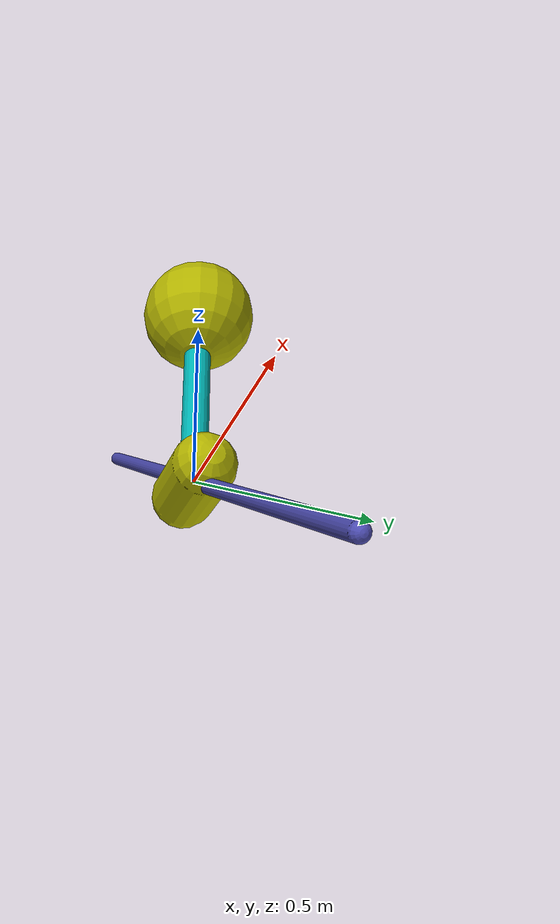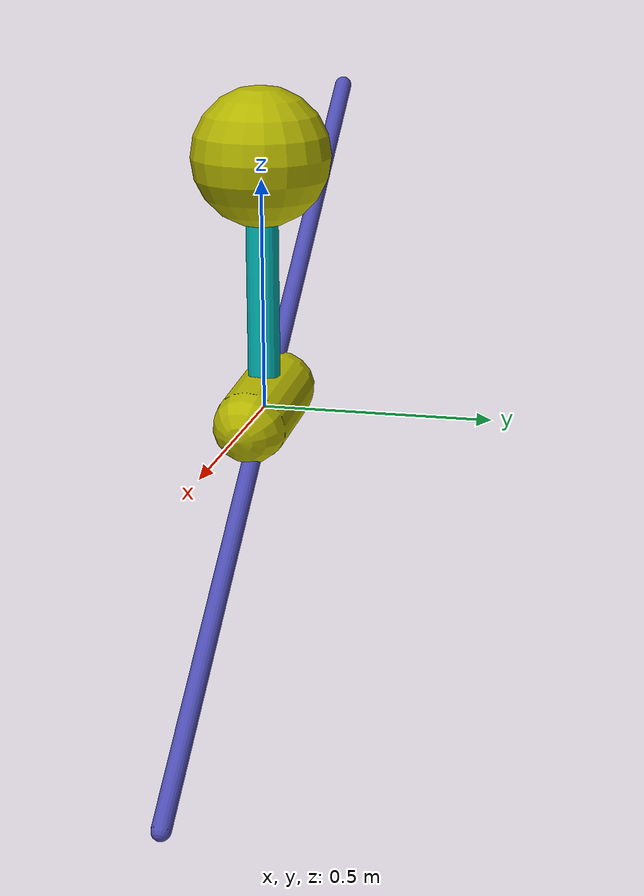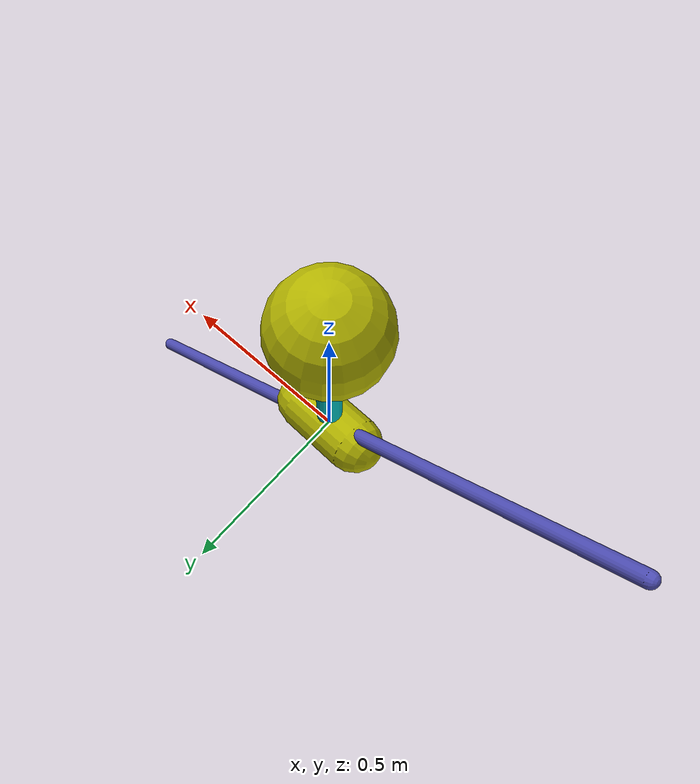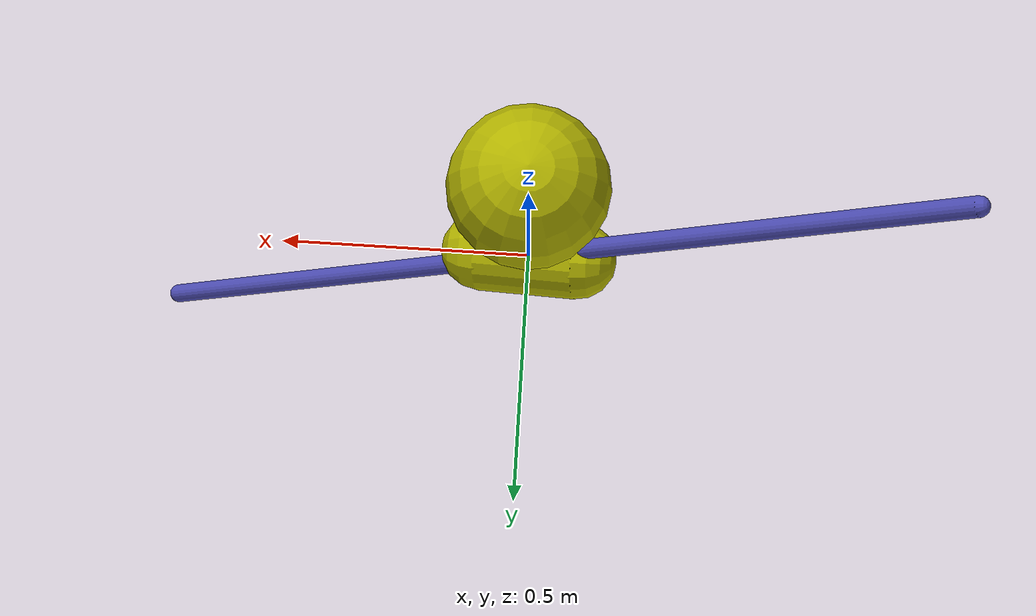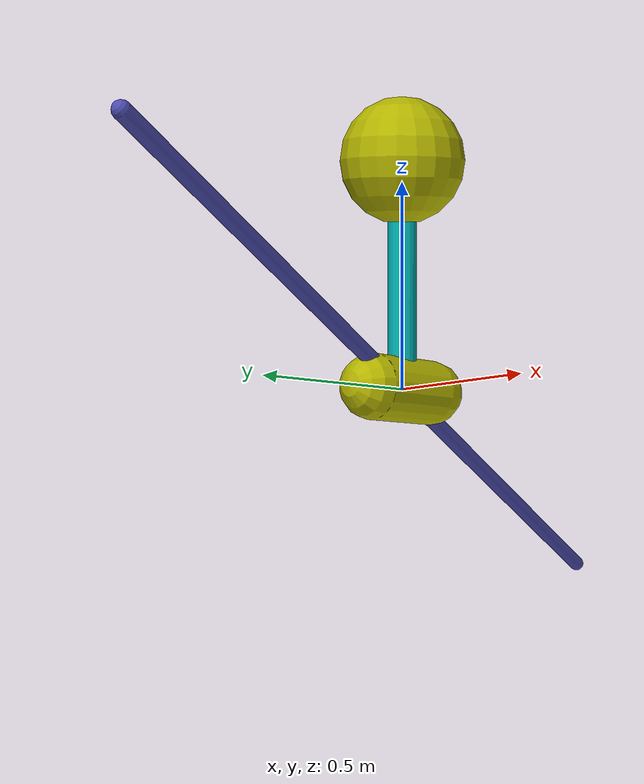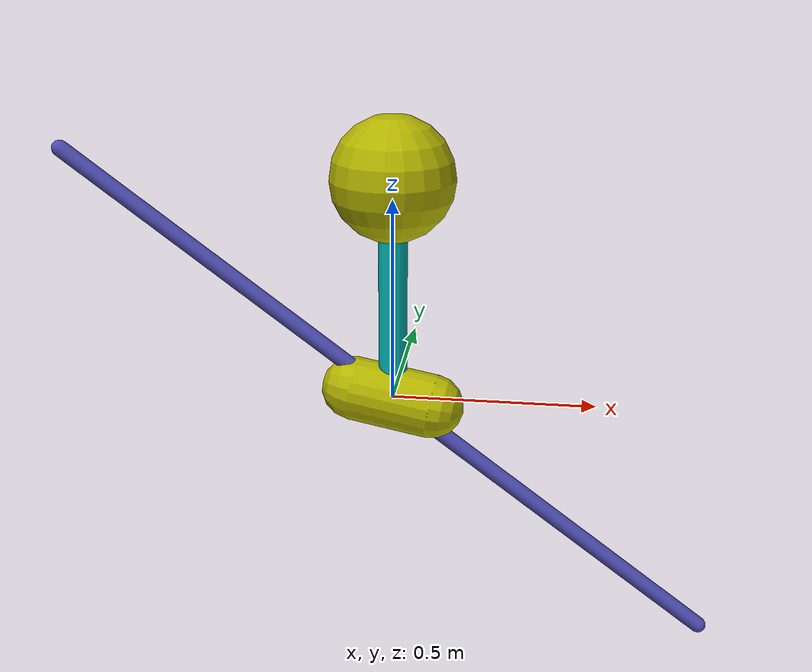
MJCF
<mujoco model="inverted_pendulum_multi">
	<compiler inertiafromgeom="true"/>
	<default>
		<joint armature="0" damping="1" limited="true"/>
		<geom contype="0" friction="1 0.1 0.1" rgba="0.7 0.7 0 1"/>
		<tendon/>
		<motor ctrlrange="-3 3"/>
	</default>
	<option gravity="0 0 -9.81" integrator="RK4" timestep="0.02"/>
	<size nstack="3000"/>
	<worldbody>
		<!--geom name="ground" type="plane" pos="0 0 0" /-->
		<geom name="rail" pos="0 0 0" quat="0.47133333333 0 0.94266666666 0" rgba="0.3 0.3 0.7 1" size="0.02 1" type="capsule"/>
		<body name="cart" pos="0 0 0">
      <inertial pos="0 0 0" mass="0.7" diaginertia="1 1.5 1"/>
			<joint axis="-0.8 0 0.6" limited="true" name="slider" pos="0 0 0" range="-1 1" frictionloss="15" type="slide"/>
			<!--geom name="cart" pos="0 0 0" quat="0.707 0 0.707 0" size="0.1 0.1" type="capsule"/-->
			<geom name="cart" pos="0 0 0" quat="0.6 0.05 0.707 0" size="0.08 0.1" type="capsule"/>
			<body name="pole" pos="0 0 0">
				<inertial pos="0 0 0" mass="0.5" diaginertia="1 1 0.8"/>
				<joint axis="0 1 0" name="hinge" pos="0 0 0" range="-90 90" frictionloss="0.2" type="hinge"/>
				<geom fromto="0 0 0 0.001 0 0.6" name="cpole" rgba="0 0.7 0.7 1" size="0.035 0.4" type="capsule"/>
				<body name="ball" pos="0 0 0.55">
					<inertial pos="0 0 0" mass="1.5" diaginertia="166.667 166.667 166.667"/>
					<geom contype="0" name="ball" pos="0 0 0" size="0.15" type="sphere"/>
				</body>
			</body>
		</body>
	</worldbody>
	<actuator>
		<motor gear="35" joint="slider" name="slide"/>
	</actuator>
</mujoco>
